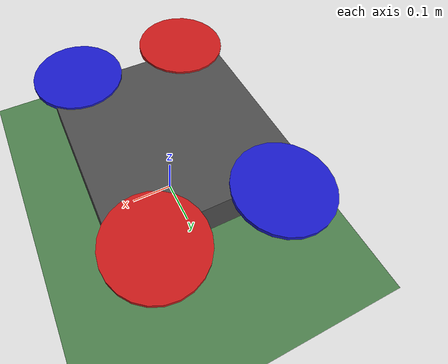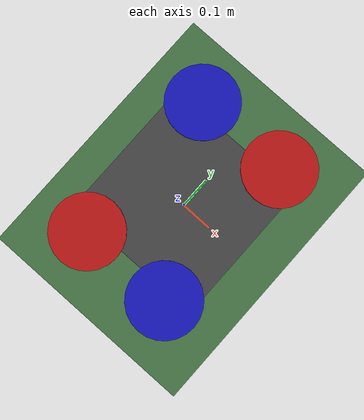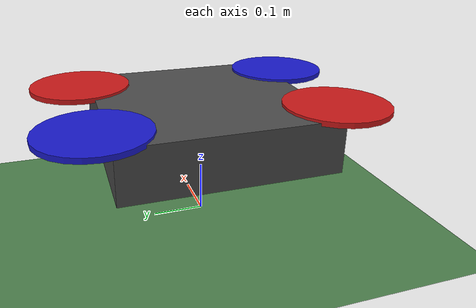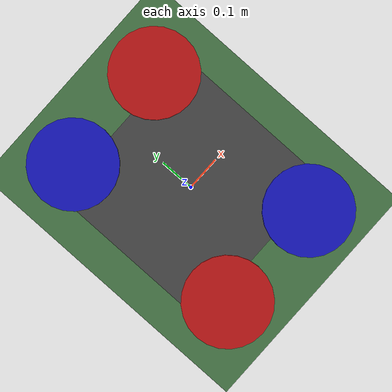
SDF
<?xml version="1.0" ?>
<sdf version="1.6">
  <world name="aviate_sitl">
    <physics name="1ms" type="ignored">
      <max_step_size>0.001</max_step_size>
      <real_time_factor>1.0</real_time_factor>
    </physics>

    <!-- Required system plugins -->
    <plugin filename="gz-sim-physics-system"
            name="gz::sim::systems::Physics">
    </plugin>
    <plugin filename="gz-sim-scene-broadcaster-system"
            name="gz::sim::systems::SceneBroadcaster">
    </plugin>
    <plugin filename="gz-sim-user-commands-system"
            name="gz::sim::systems::UserCommands">
    </plugin>
    <plugin filename="gz-sim-sensors-system"
            name="gz::sim::systems::Sensors">
      <render_engine>ogre2</render_engine>
    </plugin>
    <plugin filename="gz-sim-imu-system"
            name="gz::sim::systems::Imu">
    </plugin>

    <!-- Sunlight -->
    <light type="directional" name="sun">
      <cast_shadows>true</cast_shadows>
      <pose>0 0 10 0 0 0</pose>
      <diffuse>0.8 0.8 0.8 1</diffuse>
      <specular>0.2 0.2 0.2 1</specular>
      <attenuation>
        <range>1000</range>
        <constant>0.9</constant>
        <linear>0.01</linear>
        <quadratic>0.001</quadratic>
      </attenuation>
      <direction>-0.5 0.1 -0.9</direction>
    </light>

    <!-- Ground plane -->
    <model name="ground_plane">
      <static>true</static>
      <link name="link">
        <collision name="collision">
          <geometry>
            <plane>
              <normal>0 0 1</normal>
              <size>100 100</size>
            </plane>
          </geometry>
        </collision>
        <visual name="visual">
          <geometry>
            <plane>
              <normal>0 0 1</normal>
              <size>100 100</size>
            </plane>
          </geometry>
          <material>
            <ambient>0.3 0.5 0.3 1</ambient>
            <diffuse>0.3 0.5 0.3 1</diffuse>
            <specular>0.1 0.1 0.1 1</specular>
          </material>
        </visual>
      </link>
    </model>

    <!-- X3 Quadcopter -->
    <model name="X3">
      <pose>0 0 0.2 0 0 0</pose>

      <!-- Base link with IMU sensor -->
      <link name="base_link">
        <inertial>
          <mass>1.5</mass>
          <inertia>
            <ixx>0.029125</ixx>
            <iyy>0.029125</iyy>
            <izz>0.055225</izz>
          </inertia>
        </inertial>
        <collision name="collision">
          <geometry>
            <box><size>0.4 0.4 0.1</size></box>
          </geometry>
        </collision>
        <visual name="visual">
          <geometry>
            <box><size>0.4 0.4 0.1</size></box>
          </geometry>
          <material>
            <ambient>0.2 0.2 0.2 1</ambient>
            <diffuse>0.3 0.3 0.3 1</diffuse>
          </material>
        </visual>

        <!-- IMU Sensor -->
        <sensor name="imu_sensor" type="imu">
          <always_on>true</always_on>
          <update_rate>250</update_rate>
          <visualize>false</visualize>
          <topic>/X3/imu</topic>
          <imu>
            <angular_velocity>
              <x><noise type="gaussian"><mean>0</mean><stddev>0.0002</stddev></noise></x>
              <y><noise type="gaussian"><mean>0</mean><stddev>0.0002</stddev></noise></y>
              <z><noise type="gaussian"><mean>0</mean><stddev>0.0002</stddev></noise></z>
            </angular_velocity>
            <linear_acceleration>
              <x><noise type="gaussian"><mean>0</mean><stddev>0.017</stddev></noise></x>
              <y><noise type="gaussian"><mean>0</mean><stddev>0.017</stddev></noise></y>
              <z><noise type="gaussian"><mean>0</mean><stddev>0.017</stddev></noise></z>
            </linear_acceleration>
          </imu>
        </sensor>
      </link>

      <!-- Rotor 0 (front-right, CCW) -->
      <link name="rotor_0">
        <pose>0.13 -0.22 0.05 0 0 0</pose>
        <inertial>
          <mass>0.025</mass>
          <inertia>
            <ixx>9.75e-06</ixx>
            <iyy>1.66704e-04</iyy>
            <izz>1.66704e-04</izz>
          </inertia>
        </inertial>
        <collision name="collision">
          <geometry><cylinder><radius>0.1</radius><length>0.01</length></cylinder></geometry>
        </collision>
        <visual name="visual">
          <geometry><cylinder><radius>0.1</radius><length>0.01</length></cylinder></geometry>
          <material><ambient>0.1 0.1 0.8 1</ambient><diffuse>0.1 0.1 0.8 1</diffuse></material>
        </visual>
      </link>
      <joint name="rotor_0_joint" type="revolute">
        <parent>base_link</parent>
        <child>rotor_0</child>
        <axis><xyz>0 0 1</xyz><limit><lower>-1e16</lower><upper>1e16</upper></limit></axis>
      </joint>

      <!-- Rotor 1 (rear-left, CCW) -->
      <link name="rotor_1">
        <pose>-0.13 0.22 0.05 0 0 0</pose>
        <inertial>
          <mass>0.025</mass>
          <inertia>
            <ixx>9.75e-06</ixx>
            <iyy>1.66704e-04</iyy>
            <izz>1.66704e-04</izz>
          </inertia>
        </inertial>
        <collision name="collision">
          <geometry><cylinder><radius>0.1</radius><length>0.01</length></cylinder></geometry>
        </collision>
        <visual name="visual">
          <geometry><cylinder><radius>0.1</radius><length>0.01</length></cylinder></geometry>
          <material><ambient>0.1 0.1 0.8 1</ambient><diffuse>0.1 0.1 0.8 1</diffuse></material>
        </visual>
      </link>
      <joint name="rotor_1_joint" type="revolute">
        <parent>base_link</parent>
        <child>rotor_1</child>
        <axis><xyz>0 0 1</xyz><limit><lower>-1e16</lower><upper>1e16</upper></limit></axis>
      </joint>

      <!-- Rotor 2 (front-left, CW) -->
      <link name="rotor_2">
        <pose>0.13 0.22 0.05 0 0 0</pose>
        <inertial>
          <mass>0.025</mass>
          <inertia>
            <ixx>9.75e-06</ixx>
            <iyy>1.66704e-04</iyy>
            <izz>1.66704e-04</izz>
          </inertia>
        </inertial>
        <collision name="collision">
          <geometry><cylinder><radius>0.1</radius><length>0.01</length></cylinder></geometry>
        </collision>
        <visual name="visual">
          <geometry><cylinder><radius>0.1</radius><length>0.01</length></cylinder></geometry>
          <material><ambient>0.8 0.1 0.1 1</ambient><diffuse>0.8 0.1 0.1 1</diffuse></material>
        </visual>
      </link>
      <joint name="rotor_2_joint" type="revolute">
        <parent>base_link</parent>
        <child>rotor_2</child>
        <axis><xyz>0 0 1</xyz><limit><lower>-1e16</lower><upper>1e16</upper></limit></axis>
      </joint>

      <!-- Rotor 3 (rear-right, CW) -->
      <link name="rotor_3">
        <pose>-0.13 -0.22 0.05 0 0 0</pose>
        <inertial>
          <mass>0.025</mass>
          <inertia>
            <ixx>9.75e-06</ixx>
            <iyy>1.66704e-04</iyy>
            <izz>1.66704e-04</izz>
          </inertia>
        </inertial>
        <collision name="collision">
          <geometry><cylinder><radius>0.1</radius><length>0.01</length></cylinder></geometry>
        </collision>
        <visual name="visual">
          <geometry><cylinder><radius>0.1</radius><length>0.01</length></cylinder></geometry>
          <material><ambient>0.8 0.1 0.1 1</ambient><diffuse>0.8 0.1 0.1 1</diffuse></material>
        </visual>
      </link>
      <joint name="rotor_3_joint" type="revolute">
        <parent>base_link</parent>
        <child>rotor_3</child>
        <axis><xyz>0 0 1</xyz><limit><lower>-1e16</lower><upper>1e16</upper></limit></axis>
      </joint>

      <!-- Motor plugins -->
      <plugin filename="gz-sim-multicopter-motor-model-system"
              name="gz::sim::systems::MulticopterMotorModel">
        <robotNamespace>X3</robotNamespace>
        <jointName>rotor_0_joint</jointName>
        <linkName>rotor_0</linkName>
        <turningDirection>ccw</turningDirection>
        <timeConstantUp>0.0125</timeConstantUp>
        <timeConstantDown>0.025</timeConstantDown>
        <maxRotVelocity>800.0</maxRotVelocity>
        <motorConstant>8.54858e-06</motorConstant>
        <momentConstant>0.016</momentConstant>
        <commandSubTopic>gazebo/command/motor_speed</commandSubTopic>
        <actuator_number>0</actuator_number>
        <rotorDragCoefficient>8.06428e-05</rotorDragCoefficient>
        <rollingMomentCoefficient>1e-06</rollingMomentCoefficient>
        <rotorVelocitySlowdownSim>10</rotorVelocitySlowdownSim>
        <motorType>velocity</motorType>
      </plugin>

      <plugin filename="gz-sim-multicopter-motor-model-system"
              name="gz::sim::systems::MulticopterMotorModel">
        <robotNamespace>X3</robotNamespace>
        <jointName>rotor_1_joint</jointName>
        <linkName>rotor_1</linkName>
        <turningDirection>ccw</turningDirection>
        <timeConstantUp>0.0125</timeConstantUp>
        <timeConstantDown>0.025</timeConstantDown>
        <maxRotVelocity>800.0</maxRotVelocity>
        <motorConstant>8.54858e-06</motorConstant>
        <momentConstant>0.016</momentConstant>
        <commandSubTopic>gazebo/command/motor_speed</commandSubTopic>
        <actuator_number>1</actuator_number>
        <rotorDragCoefficient>8.06428e-05</rotorDragCoefficient>
        <rollingMomentCoefficient>1e-06</rollingMomentCoefficient>
        <rotorVelocitySlowdownSim>10</rotorVelocitySlowdownSim>
        <motorType>velocity</motorType>
      </plugin>

      <plugin filename="gz-sim-multicopter-motor-model-system"
              name="gz::sim::systems::MulticopterMotorModel">
        <robotNamespace>X3</robotNamespace>
        <jointName>rotor_2_joint</jointName>
        <linkName>rotor_2</linkName>
        <turningDirection>cw</turningDirection>
        <timeConstantUp>0.0125</timeConstantUp>
        <timeConstantDown>0.025</timeConstantDown>
        <maxRotVelocity>800.0</maxRotVelocity>
        <motorConstant>8.54858e-06</motorConstant>
        <momentConstant>0.016</momentConstant>
        <commandSubTopic>gazebo/command/motor_speed</commandSubTopic>
        <actuator_number>2</actuator_number>
        <rotorDragCoefficient>8.06428e-05</rotorDragCoefficient>
        <rollingMomentCoefficient>1e-06</rollingMomentCoefficient>
        <rotorVelocitySlowdownSim>10</rotorVelocitySlowdownSim>
        <motorType>velocity</motorType>
      </plugin>

      <plugin filename="gz-sim-multicopter-motor-model-system"
              name="gz::sim::systems::MulticopterMotorModel">
        <robotNamespace>X3</robotNamespace>
        <jointName>rotor_3_joint</jointName>
        <linkName>rotor_3</linkName>
        <turningDirection>cw</turningDirection>
        <timeConstantUp>0.0125</timeConstantUp>
        <timeConstantDown>0.025</timeConstantDown>
        <maxRotVelocity>800.0</maxRotVelocity>
        <motorConstant>8.54858e-06</motorConstant>
        <momentConstant>0.016</momentConstant>
        <commandSubTopic>gazebo/command/motor_speed</commandSubTopic>
        <actuator_number>3</actuator_number>
        <rotorDragCoefficient>8.06428e-05</rotorDragCoefficient>
        <rollingMomentCoefficient>1e-06</rollingMomentCoefficient>
        <rotorVelocitySlowdownSim>10</rotorVelocitySlowdownSim>
        <motorType>velocity</motorType>
      </plugin>

      <!-- Odometry publisher -->
      <plugin filename="gz-sim-odometry-publisher-system"
              name="gz::sim::systems::OdometryPublisher">
        <dimensions>3</dimensions>
        <odom_publish_frequency>250</odom_publish_frequency>
      </plugin>
    </model>
  </world>
</sdf>
